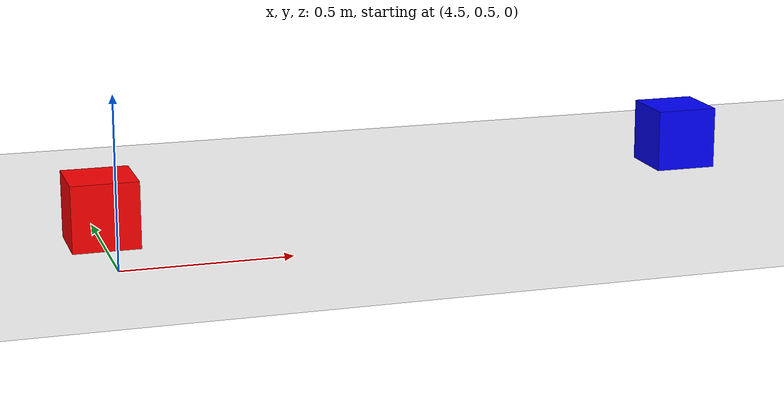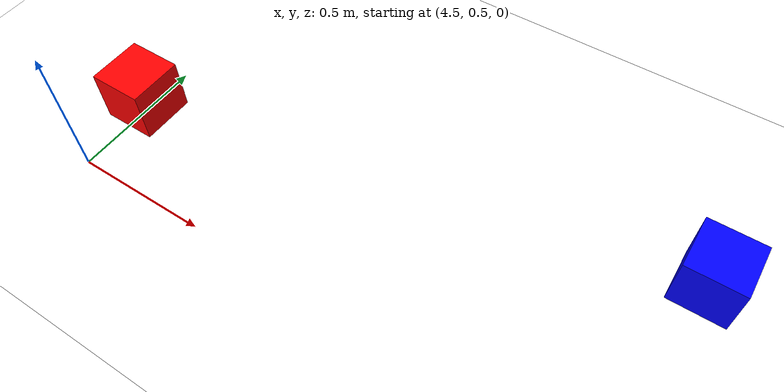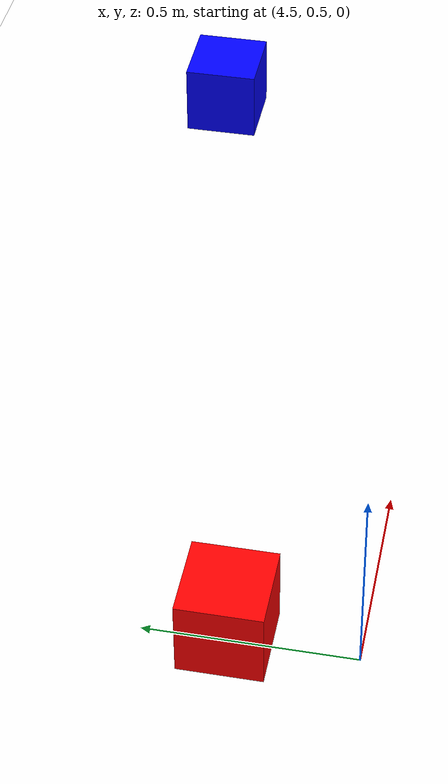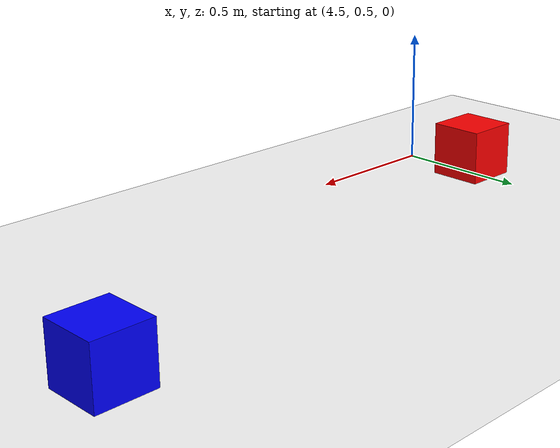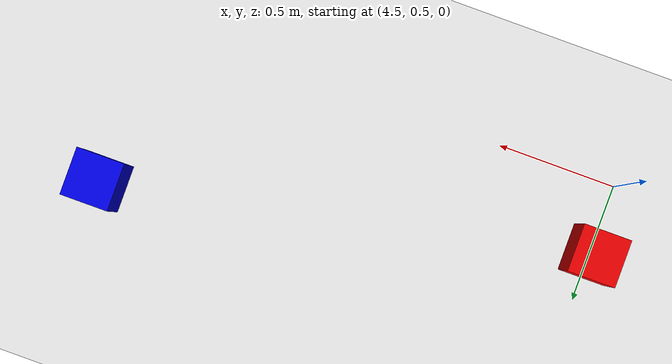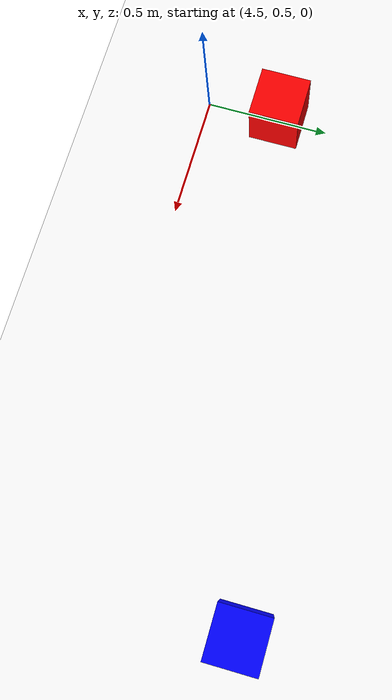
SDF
<?xml version="1.0" ?>
<sdf version="1.9">
  <world name="obstacle_track">

    <physics name="1ms" type="ignored">
      <max_step_size>0.001</max_step_size>
      <real_time_factor>1.0</real_time_factor>
    </physics>

    <plugin filename="gz-sim-physics-system"
            name="gz::sim::systems::Physics"/>
    <plugin filename="gz-sim-scene-broadcaster-system"
            name="gz::sim::systems::SceneBroadcaster"/>
    <plugin filename="gz-sim-user-commands-system"
            name="gz::sim::systems::UserCommands"/>

    <light type="directional" name="sun">
      <cast_shadows>false</cast_shadows>
      <pose>0 0 10 0 0 0</pose>
      <diffuse>1.0 1.0 1.0 1</diffuse>
      <specular>0.2 0.2 0.2 1</specular>
      <direction>0 0 -1</direction>
    </light>

    <model name="lane_track_ground">
      <static>true</static>
      <pose>4.5 1.0 0 0 0 0</pose>
      <link name="track_link">
        <visual name="track_visual">
          <geometry>
            <plane>
              <normal>0 0 1</normal>
              <size>9 2</size>
            </plane>
          </geometry>
          <material>
            <ambient>1 1 1 1</ambient>
            <diffuse>1 1 1 1</diffuse>
            <specular>0.05 0.05 0.05 1</specular>
            <pbr>
              <metal>
                <albedo_map>/home/phibui2112/main/1_projects/1_autonomous_car_research/ros2_ws/install/gazebo_ackermann_steering_vehicle/share/gazebo_ackermann_steering_vehicle/media/materials/textures/lane_track.png</albedo_map>
                <metalness>0.0</metalness>
                <roughness>1.0</roughness>
              </metal>
            </pbr>
          </material>
        </visual>
        <collision name="track_collision">
          <geometry>
            <plane>
              <normal>0 0 1</normal>
              <size>9 2</size>
            </plane>
          </geometry>
          <surface>
            <friction><ode><mu>0.8</mu><mu2>0.8</mu2></ode></friction>
          </surface>
        </collision>
      </link>
    </model>

    <!-- Obstacle 1 -->
    <model name="obstacle_1">
      <static>true</static>
      <pose>4.5 0.8 0.1 0 0 0</pose> <!-- Slightly off center to partially block lane -->
      <link name="link">
        <collision name="collision">
          <geometry>
            <box><size>0.2 0.2 0.2</size></box>
          </geometry>
        </collision>
        <visual name="visual">
          <geometry>
            <box><size>0.2 0.2 0.2</size></box>
          </geometry>
          <material>
            <ambient>1 0 0 1</ambient>
            <diffuse>1 0 0 1</diffuse>
          </material>
        </visual>
      </link>
    </model>

    <!-- Obstacle 2 -->
    <model name="obstacle_2">
      <static>true</static>
      <pose>6.5 1.2 0.1 0 0 0</pose> <!-- On the other side -->
      <link name="link">
        <collision name="collision">
          <geometry>
            <box><size>0.2 0.2 0.2</size></box>
          </geometry>
        </collision>
        <visual name="visual">
          <geometry>
            <box><size>0.2 0.2 0.2</size></box>
          </geometry>
          <material>
            <ambient>0 0 1 1</ambient>
            <diffuse>0 0 1 1</diffuse>
          </material>
        </visual>
      </link>
    </model>

  </world>
</sdf>
